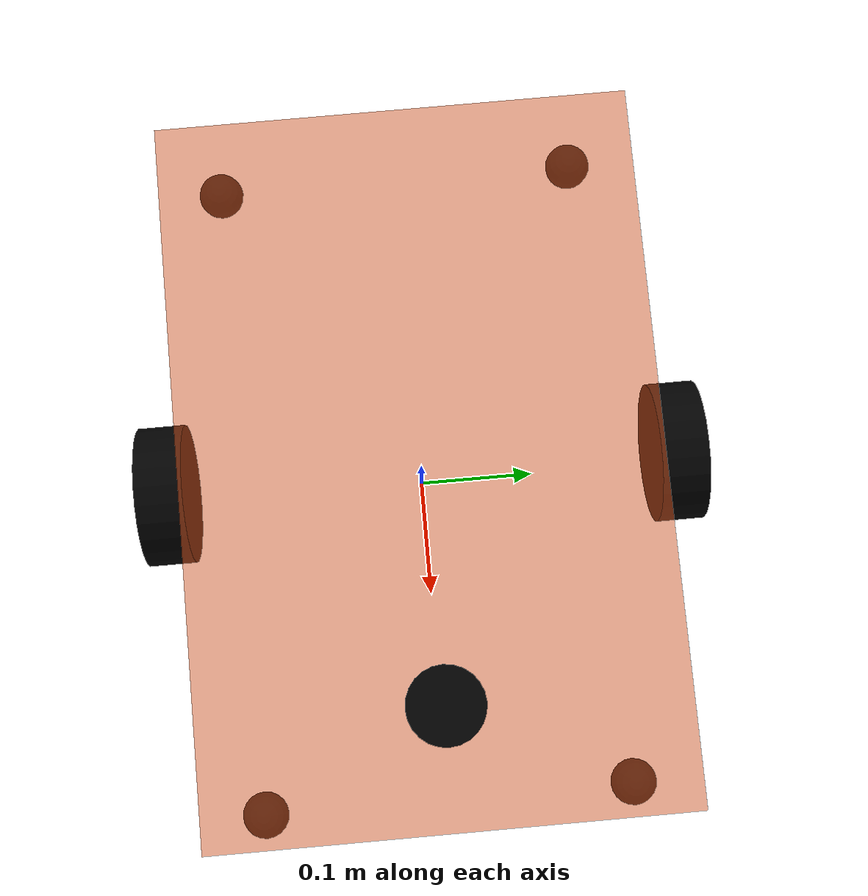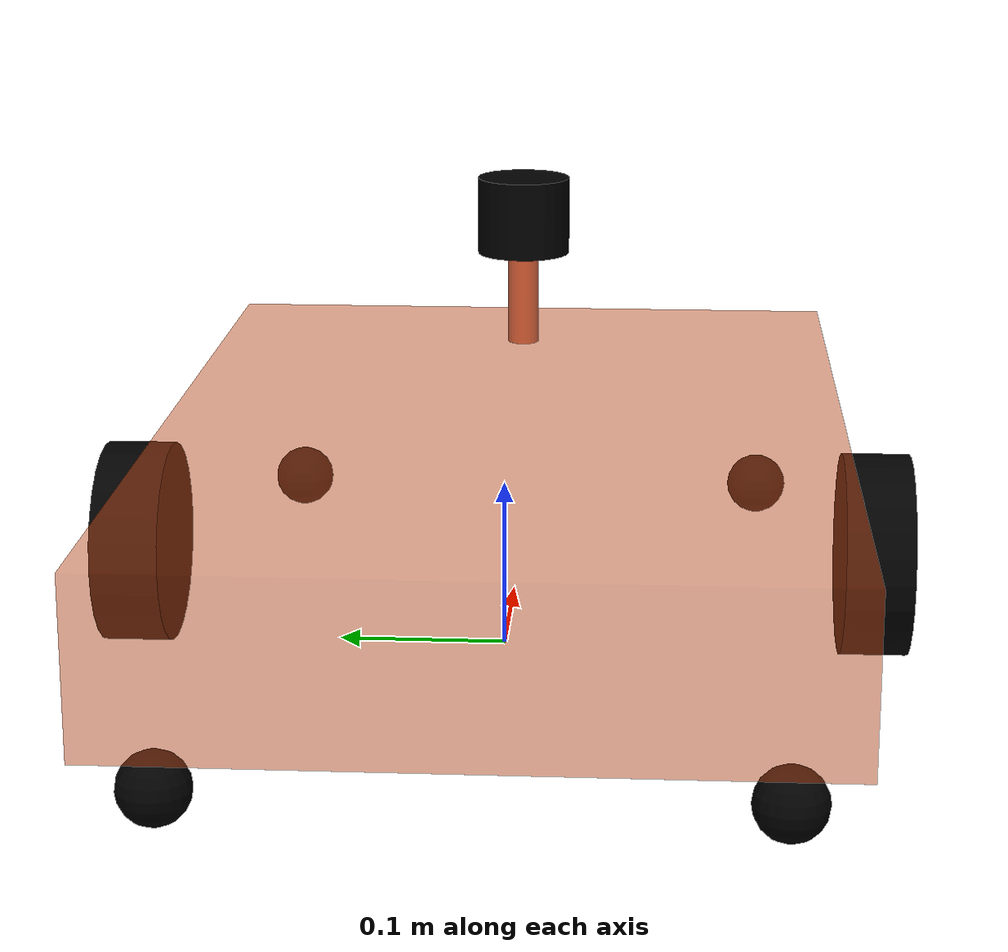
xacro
<robot name="car" xmlns:xacro="http://wiki.ros.org/xacro">
    <xacro:include filename="model_inertial_matrix.xacro" />
    <xacro:include filename="model01_property.xacro" />
    <xacro:include filename="model02_base.xacro" />
    <xacro:include filename="model03_drivewheel.xacro" />
    <xacro:include filename="model04_spinnerwheel.xacro" />
    <xacro:include filename="model05_laser.xacro" />
    <xacro:include filename="gazebo01_move.xacro" />
    <xacro:include filename="gazebo02_laser.xacro" />
</robot>

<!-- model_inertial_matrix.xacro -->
<robot name="inertial_matrix" xmlns:xacro="http://wiki.ros.org/xacro">
    <!-- Macro for inertia matrix -->
    <xacro:macro name="sphere_inertial_matrix" params="m r">
        <inertial>
            <mass value="${m}" />
            <inertia ixx="${2*m*r*r/5}" ixy="0" ixz="0"
                iyy="${2*m*r*r/5}" iyz="0"
                izz="${2*m*r*r/5}" />
        </inertial>
    </xacro:macro>

    <xacro:macro name="cylinder_inertial_matrix" params="m r h">
        <inertial>
            <mass value="${m}" />
            <inertia ixx="${m*(3*r*r+h*h)/12}" ixy = "0" ixz = "0"
                iyy="${m*(3*r*r+h*h)/12}" iyz = "0"
                izz="${m*r*r/2}" />
        </inertial>
    </xacro:macro>

    <xacro:macro name="Box_inertial_matrix" params="m l w h">
       <inertial>
               <mass value="${m}" />
               <inertia ixx="${m*(h*h + l*l)/12}" ixy = "0" ixz = "0"
                   iyy="${m*(w*w + l*l)/12}" iyz= "0"
                   izz="${m*(w*w + h*h)/12}" />
       </inertial>
   </xacro:macro>
</robot>

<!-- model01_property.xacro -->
<robot name="car_info" xmlns:xacro="http://www.ros.org/wiki/xacro">

    <!-- 常量属性 -->
    <xacro:property name="PI" value="3.1415926" />

    <!-- 底盘属性 -->
    <xacro:property name="base_link_length" value="0.6" />
    <xacro:property name="base_link_width" value="0.4" />
    <xacro:property name="base_link_height" value="0.10" />
    <xacro:property name="base_link_mass" value="0.1" />    <!-- 底盘质量 -->
    <xacro:property name="earth_space" value="0.04" />    <!-- 离地距离 -->
    <xacro:property name="base_joint_z" value="${earth_space + base_link_height / 2}" />   <!-- 底盘与基底关节属性 -->

    <!-- 驱动轮属性 -->
    <xacro:property name="drive_wheel_radius" value="0.06" />
    <xacro:property name="drive_wheel_width" value="0.04" />
    <xacro:property name="drive_wheel_mass" value="2" />    <!-- 驱动轮质量 -->
    <!-- 驱动关节属性 -->
    <xacro:property name="drive_joint_x" value="0" />
    <xacro:property name="drive_joint_y" value="${base_link_width / 2 + drive_wheel_width / 2}" />        <!-- y= 车宽 / 2 + 车轮宽 / 2  -->
    <xacro:property name="drive_joint_z" value="${(base_link_height / 2 + earth_space - drive_wheel_radius) * -1}" />   <!-- z= 车体高度 / 2 + 离地间距 - 车轮半径 -->

    <!-- 万向轮属性 -->
    <xacro:property name="spinner_wheel_radius" value="0.02"/>
    <xacro:property name="spinner_wheel_mass" value="0.001"/> <!-- 万向轮质量 -->
    <!-- 万向轮属性关节属性 -->
    <xacro:property name="spinner_joint_x" value="0.28" />
    <xacro:property name="spinner_joint_y" value="0.16" />
    <xacro:property name="spinner_joint_z" value="${(base_link_height / 2 + spinner_wheel_radius) * -1}" />        <!-- z= 车体高度 / 2 + 车轮半径 -->

    <!-- 支撑轮属性 -->
    <xacro:property name="support_wheel_radius" value="0.04" />
    <xacro:property name="support_wheel_width" value="0.04" />
    <xacro:property name="support_wheel_mass" value="0.001" />
    <!-- 支撑轮关节属性 -->
    <xacro:property name="support_joint_x" value="0.28" />
    <xacro:property name="support_joint_y" value="${base_link_width / 2 + support_wheel_width / 2}" />
    <xacro:property name="support_joint_z" value="${(base_link_height / 2 + earth_space - support_wheel_radius) * -1}" />

    <!-- 雷达支架 -->
    <xacro:property name="sup_length" value="0.06" />
    <xacro:property name="sup_radius" value="0.01" />
    <xacro:property name="sup_x" value="0.20" />
    <xacro:property name="sup_y" value="0.0" />
    <xacro:property name="sup_z" value="${base_link_height / 2 + sup_length / 2}" />
    <xacro:property name="sup_mass" value="0.02" />

    <!-- 雷达属性 -->
    <xacro:property name="laser_length" value="0.05" />
    <xacro:property name="laser_radius" value="0.03" />
    <xacro:property name="laser_x" value="0.0" />
    <xacro:property name="laser_y" value="0.0" />
    <xacro:property name="laser_z" value="${sup_length / 2 + laser_length / 2}" />
    <xacro:property name="laser_mass" value="0.05" />

</robot>

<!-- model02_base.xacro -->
<robot name="car_base" xmlns:xacro="http://www.ros.org/wiki/xacro">
    <!-- 设置 base_footprint  -->
    <link name="base_footprint">
        <visual>
            <geometry>
                <sphere radius="0.001" />
            </geometry>
        </visual>
    </link>
    <!-- 底盘 -->
    <link name="car_base_link">
        <visual>
            <geometry>
                <box size="${base_link_length} ${base_link_width} ${base_link_height}"/>
            </geometry>
            <origin xyz="0 0 0" rpy="0 0 0" />
            <material name="yellow">
                <color rgba="0.8 0.3 0.1 0.5" />
            </material>
        </visual>
        <collision>
            <geometry>
                <box size="${base_link_length} ${base_link_width} ${base_link_height}"/>
            </geometry>
            <origin xyz="0 0 0" rpy="0 0 0" />
        </collision>
        <xacro:Box_inertial_matrix m="${base_link_mass}" l="${base_link_length}" w="${base_link_width}" h="${base_link_height}" />
    </link>
    <!-- 基底与底盘的关节 -->
    <joint name="base_link2base_footprint" type="fixed">
        <parent link="base_footprint" />
        <child link="car_base_link"/>
        <origin xyz="0 0 ${base_joint_z}" />
    </joint>
    <!-- 底盘颜色 -->
    <gazebo reference="base_link">
        <material>Gazebo/Yellow</material>
    </gazebo>
</robot>

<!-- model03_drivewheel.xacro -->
<robot name="drive_wheel" xmlns:xacro="http://wiki.ros.org/xacro">

    <xacro:macro name="drive_wheel_func" params="wheel_name flag" >

        <link name="${wheel_name}_drive">
            <visual>
                <geometry>
                    <cylinder radius="${drive_wheel_radius}" length="${drive_wheel_width}" />
                </geometry>
                <origin xyz="0 0 0" rpy="${PI / 2} 0 0" />
                <material name="wheel_color">
                    <color rgba="0 0 0 1" />
                </material>
            </visual>

            <collision>
                <geometry>
                    <cylinder radius="${drive_wheel_radius}" length="${drive_wheel_width}" />
                </geometry>
                <origin xyz="0 0 0" rpy="${PI / 2} 0 0" />
            </collision>

            <xacro:cylinder_inertial_matrix m="${drive_wheel_mass}" r="${drive_wheel_radius}" h="${drive_wheel_width}" />
        </link>

        <joint name="${wheel_name}_drive2link" type="continuous">
            <parent link="car_base_link"  />
            <child link="${wheel_name}_drive" />
            <origin xyz="${drive_joint_x} ${drive_joint_y * flag} ${drive_joint_z}" rpy="0 0 0" />
            <axis xyz="0 1 0" />
        </joint>

        <gazebo reference="${wheel_name}_drive">
            <material>Gazebo/Red</material>
        </gazebo>

    </xacro:macro>

    <xacro:drive_wheel_func wheel_name="left" flag="1" />
    <xacro:drive_wheel_func wheel_name="right" flag="-1" />
</robot>

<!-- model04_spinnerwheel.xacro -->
<robot name="wheel" xmlns:xacro="http://wiki.ros.org/xacro">

    <xacro:macro name="spinner_wheel_front_func" params="wheel_name flag" >

        <link name="${wheel_name}_spinner">
            <visual>
                <geometry>
                    <sphere radius="${spinner_wheel_radius}" />
                </geometry>
                <origin xyz="0 0 0" rpy="0 0 0" />
                <material name="black">
                    <color rgba="0.0 0.0 0.0 1.0" />
                </material>
            </visual>

            <collision>
                <geometry>
                    <sphere radius="${spinner_wheel_radius}" />
                </geometry>
                <origin xyz="0 0 0" rpy="0 0 0" />
            </collision>

            <xacro:sphere_inertial_matrix m="${spinner_wheel_mass}" r="${spinner_wheel_radius}" />
        </link>

        <joint name="${wheel_name}_spinner2link" type="continuous">
            <parent link="car_base_link" />
            <child link="${wheel_name}_spinner" />
            <origin xyz="${spinner_joint_x} ${spinner_joint_y * flag} ${spinner_joint_z}" rpy="0 0 0" />
            <axis xyz="1 1 1" />
        </joint>

        <gazebo reference="${wheel_name}_spinner">
            <material>Gazebo/Red</material>
        </gazebo>
    </xacro:macro>

    <xacro:spinner_wheel_front_func wheel_name="left_front" flag="1"  />
    <xacro:spinner_wheel_front_func wheel_name="right_front" flag="-1" />

    <xacro:macro name="spinner_wheel_back_func" params="wheel_name flag" >

        <link name="${wheel_name}_spinner">
            <visual>
                <geometry>
                    <sphere radius="${spinner_wheel_radius}" />
                </geometry>
                <origin xyz="0 0 0" rpy="0 0 0" />
                <material name="black">
                    <color rgba="0.0 0.0 0.0 1.0" />
                </material>
            </visual>

            <collision>
                <geometry>
                    <sphere radius="${spinner_wheel_radius}" />
                </geometry>
                <origin xyz="0 0 0" rpy="0 0 0" />
            </collision>

            <xacro:sphere_inertial_matrix m="${spinner_wheel_mass}" r="${spinner_wheel_radius}" />
        </link>

        <joint name="${wheel_name}_spinner2link" type="continuous">
            <parent link="car_base_link" />
            <child link="${wheel_name}_spinner" />
            <origin xyz="${spinner_joint_x * -1} ${spinner_joint_y * flag} ${spinner_joint_z}" rpy="0 0 0" />
            <axis xyz="1 1 1" />
        </joint>

        <gazebo reference="${wheel_name}_spinner">
            <material>Gazebo/Red</material>
        </gazebo>
    </xacro:macro>

    <xacro:spinner_wheel_back_func wheel_name="left_back" flag="1"  />
    <xacro:spinner_wheel_back_func wheel_name="right_back" flag="-1" />

</robot>

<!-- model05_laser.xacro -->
<robot name="laser" xmlns:xacro="http://wiki.ros.org/xacro">

    <!-- 雷达支架 -->
    <link name="sup">
        <visual>
            <geometry>
                <cylinder radius="${sup_radius}" length="${sup_length}" />
            </geometry>
            <origin xyz="0.0 0.0 0.0" rpy="0.0 0.0 0.0" />
            <material name="red">
                <color rgba="0.8 0.2 0.0 0.8" />
            </material>
        </visual>

        <collision>
            <geometry>
                <cylinder radius="${sup_radius}" length="${sup_length}" />
            </geometry>
            <origin xyz="0.0 0.0 0.0" rpy="0.0 0.0 0.0" />
        </collision>
        <xacro:cylinder_inertial_matrix m="${sup_mass}" r="${sup_radius}" h="${sup_length}" />
    </link>

    <joint name="sup2base_link" type="fixed">
        <parent link="car_base_link" />
        <child link="sup" />
        <origin xyz="${sup_x} ${sup_y} ${sup_z}" />
    </joint>

    <link name="laser">
        <visual>
            <geometry>
                <cylinder radius="${laser_radius}" length="${laser_length}" />
            </geometry>
            <origin xyz="0.0 0.0 0.0" rpy="0.0 0.0 0.0" />
            <material name="black" />
        </visual>

        <collision>
            <geometry>
                <cylinder radius="${laser_radius}" length="${laser_length}" />
            </geometry>
            <origin xyz="0.0 0.0 0.0" rpy="0.0 0.0 0.0" />
        </collision>
        <xacro:cylinder_inertial_matrix m="${laser_mass}" r="${laser_radius}" h="${laser_length}" />
    </link>

    <joint name="laser2sup" type="fixed">
        <parent link="sup" />
        <child link="laser" />
        <origin xyz="${laser_x} ${laser_y} ${laser_z}" />
    </joint>

    <gazebo reference="sup">
        <material>Gazebo/White</material>
    </gazebo>

    <gazebo reference="laser">
        <material>Gazebo/Black</material>
    </gazebo>
</robot>
